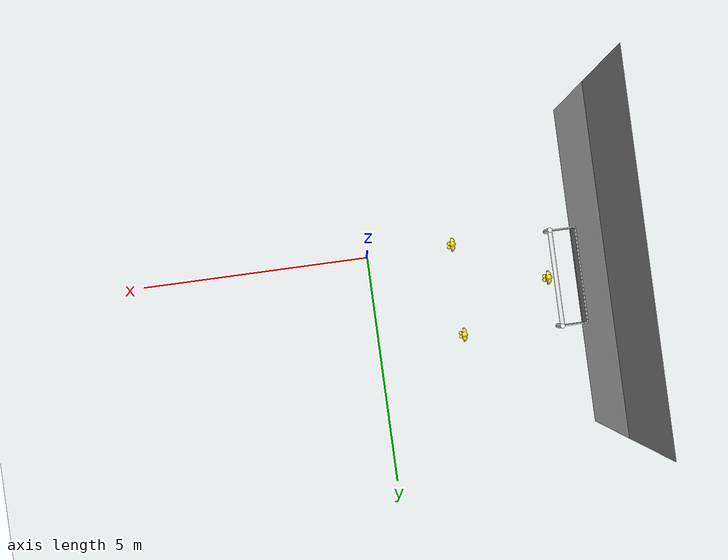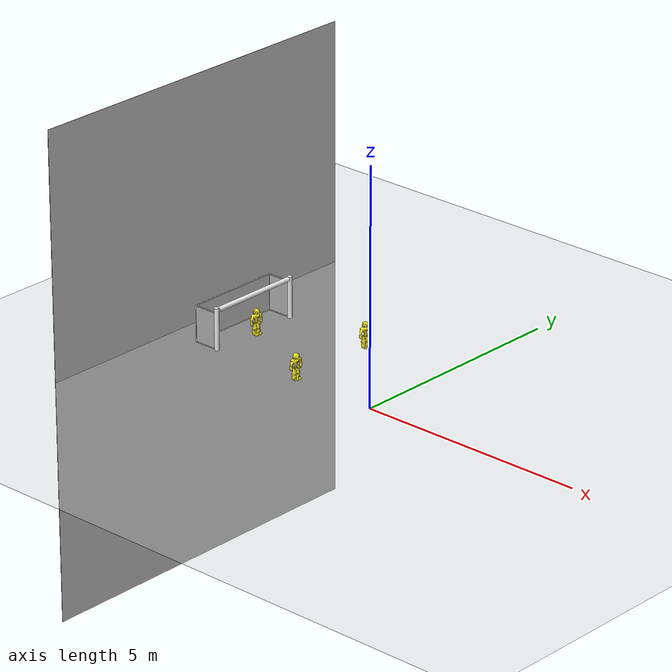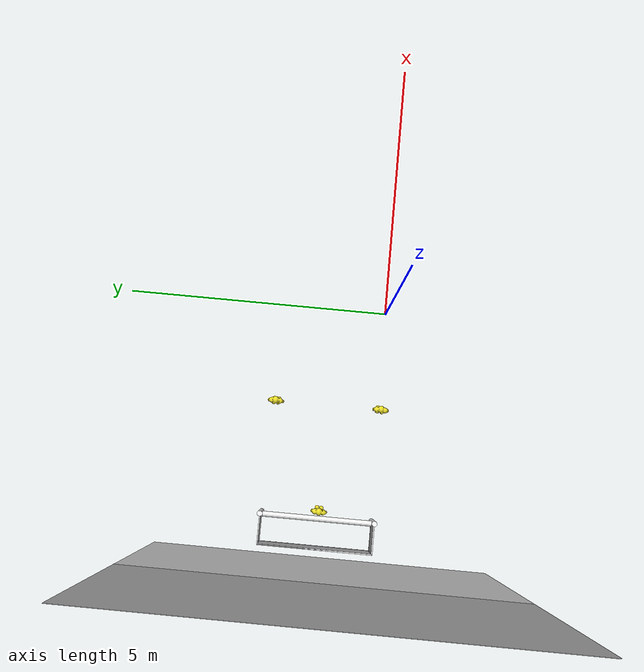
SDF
<sdf version="1.6">
 <world name="default">
  <model name="ground_plane">
   <static>1</static>
   <link name="link">
    <collision name="collision">
     <geometry><plane><normal>0 0 1</normal><size>100 100</size></plane></geometry>
     <surface><friction><ode><mu>100</mu><mu2>50</mu2></ode></friction></surface>
    </collision>
    <visual name="visual">
     <cast_shadows>0</cast_shadows>
     <geometry><plane><normal>0 0 1</normal><size>100 100</size></plane></geometry>
     <material>
      <script><uri>file://media/materials/scripts/gazebo.material</uri><name>Gazebo/Grey</name></script>
     </material>
    </visual>
    <velocity_decay><linear>0</linear><angular>0</angular></velocity_decay>
   </link>
  </model>
  <model name="unit_box">
   <model name="wall-1">
    <link name="link_2">
     <inertial>
      <mass>1</mass>
      <inertia>
       <ixx>0.166667</ixx>
       <ixy>0</ixy>
       <ixz>0</ixz>
       <iyy>0.166667</iyy>
       <iyz>0</iyz>
       <izz>0.166667</izz>
      </inertia>
     </inertial>
     <pose>-0 1e-06 0 0 -0 0</pose>
     <visual name="visual">
      <geometry><box><size>9 0.1 2</size></box></geometry>
      <material>
       <lighting>1</lighting>
       <script><uri>file://media/materials/scripts/gazebo.material</uri><name>Gazebo/Grey</name></script>
       <shader type="vertex"><normal_map>__default__</normal_map></shader>
       <ambient>0.3 0.3 0.3 1</ambient>
       <diffuse>0.7 0.7 0.7 1</diffuse>
       <specular>0.01 0.01 0.01 1</specular>
       <emissive>0 0 0 1</emissive>
      </material>
      <transparency>1</transparency>
     </visual>
     <collision name="collision">
      <geometry><box><size>9 0.1 2</size></box></geometry>
      <surface>
       <friction>
        <ode><mu>1</mu><mu2>1</mu2><fdir1>0 0 0</fdir1><slip1>0</slip1><slip2>0</slip2></ode>
        <torsional>
         <coefficient>1</coefficient>
         <patch_radius>0</patch_radius>
         <surface_radius>0</surface_radius>
         <use_patch_radius>1</use_patch_radius>
         <ode><slip>0</slip></ode>
        </torsional>
       </friction>
       <bounce><restitution_coefficient>0</restitution_coefficient><threshold>1e+06</threshold></bounce>
       <contact>
        <collide_without_contact>0</collide_without_contact>
        <collide_without_contact_bitmask>1</collide_without_contact_bitmask>
        <collide_bitmask>1</collide_bitmask>
        <ode>
         <soft_cfm>0</soft_cfm>
         <soft_erp>0.2</soft_erp>
         <kp>1e+13</kp>
         <kd>1</kd>
         <max_vel>0.01</max_vel>
         <min_depth>0</min_depth>
        </ode>
        <bullet>
         <split_impulse>1</split_impulse>
         <split_impulse_penetration_threshold>-0.01</split_impulse_penetration_threshold>
         <soft_cfm>0</soft_cfm>
         <soft_erp>0.2</soft_erp>
         <kp>1e+13</kp>
         <kd>1</kd>
        </bullet>
       </contact>
      </surface>
     </collision>
    </link>
    <static>1</static>
    <pose>3.98426 -0.483842 0 0 -0 0</pose>
   </model>
   <static>0</static>
   <pose>-3.95674 -1.5938 0 0 -0 0</pose>
  </model>
  <model name="unit_box_0">
   <model name="wall-1">
    <link name="link_2">
     <inertial>
      <mass>1</mass>
      <inertia>
       <ixx>0.166667</ixx>
       <ixy>0</ixy>
       <ixz>0</ixz>
       <iyy>0.166667</iyy>
       <iyz>0</iyz>
       <izz>0.166667</izz>
      </inertia>
     </inertial>
     <pose>-0 1e-06 0 0 -0 0</pose>
     <visual name="visual">
      <geometry><box><size>9 0.1 2</size></box></geometry>
      <material>
       <lighting>1</lighting>
       <script><uri>file://media/materials/scripts/gazebo.material</uri><name>Gazebo/Grey</name></script>
       <shader type="vertex"><normal_map>__default__</normal_map></shader>
       <ambient>0.3 0.3 0.3 1</ambient>
       <diffuse>0.7 0.7 0.7 1</diffuse>
       <specular>0.01 0.01 0.01 1</specular>
       <emissive>0 0 0 1</emissive>
      </material>
      <transparency>1</transparency>
     </visual>
     <collision name="collision">
      <geometry><box><size>9 0.1 2</size></box></geometry>
      <surface>
       <friction>
        <ode><mu>1</mu><mu2>1</mu2><fdir1>0 0 0</fdir1><slip1>0</slip1><slip2>0</slip2></ode>
        <torsional>
         <coefficient>1</coefficient>
         <patch_radius>0</patch_radius>
         <surface_radius>0</surface_radius>
         <use_patch_radius>1</use_patch_radius>
         <ode><slip>0</slip></ode>
        </torsional>
       </friction>
       <bounce><restitution_coefficient>0</restitution_coefficient><threshold>1e+06</threshold></bounce>
       <contact>
        <collide_without_contact>0</collide_without_contact>
        <collide_without_contact_bitmask>1</collide_without_contact_bitmask>
        <collide_bitmask>1</collide_bitmask>
        <ode>
         <soft_cfm>0</soft_cfm>
         <soft_erp>0.2</soft_erp>
         <kp>1e+13</kp>
         <kd>1</kd>
         <max_vel>0.01</max_vel>
         <min_depth>0</min_depth>
        </ode>
        <bullet>
         <split_impulse>1</split_impulse>
         <split_impulse_penetration_threshold>-0.01</split_impulse_penetration_threshold>
         <soft_cfm>0</soft_cfm>
         <soft_erp>0.2</soft_erp>
         <kp>1e+13</kp>
         <kd>1</kd>
        </bullet>
       </contact>
      </surface>
     </collision>
    </link>
    <static>1</static>
    <pose>3.98426 -0.483842 0 0 -0 0</pose>
   </model>
   <static>1</static>
   <pose>-3.97391 4.5594 0 0 -0 0</pose>
  </model>
  <model name="unit_box_2">
   <model name="wall-1">
    <link name="link_2">
     <inertial>
      <mass>1</mass>
      <inertia>
       <ixx>0.166667</ixx>
       <ixy>0</ixy>
       <ixz>0</ixz>
       <iyy>0.166667</iyy>
       <iyz>0</iyz>
       <izz>0.166667</izz>
      </inertia>
     </inertial>
     <pose>-0 1e-06 0 0 -0 0</pose>
     <visual name="visual">
      <geometry><box><size>9 0.1 2</size></box></geometry>
      <material>
       <lighting>1</lighting>
       <script><uri>file://media/materials/scripts/gazebo.material</uri><name>Gazebo/Grey</name></script>
       <shader type="vertex"><normal_map>__default__</normal_map></shader>
       <ambient>0.3 0.3 0.3 1</ambient>
       <diffuse>0.7 0.7 0.7 1</diffuse>
       <specular>0.01 0.01 0.01 1</specular>
       <emissive>0 0 0 1</emissive>
      </material>
      <transparency>1</transparency>
     </visual>
     <collision name="collision">
      <geometry><box><size>9 0.1 2</size></box></geometry>
      <surface>
       <friction>
        <ode><mu>1</mu><mu2>1</mu2><fdir1>0 0 0</fdir1><slip1>0</slip1><slip2>0</slip2></ode>
        <torsional>
         <coefficient>1</coefficient>
         <patch_radius>0</patch_radius>
         <surface_radius>0</surface_radius>
         <use_patch_radius>1</use_patch_radius>
         <ode><slip>0</slip></ode>
        </torsional>
       </friction>
       <bounce><restitution_coefficient>0</restitution_coefficient><threshold>1e+06</threshold></bounce>
       <contact>
        <collide_without_contact>0</collide_without_contact>
        <collide_without_contact_bitmask>1</collide_without_contact_bitmask>
        <collide_bitmask>1</collide_bitmask>
        <ode>
         <soft_cfm>0</soft_cfm>
         <soft_erp>0.2</soft_erp>
         <kp>1e+13</kp>
         <kd>1</kd>
         <max_vel>0.01</max_vel>
         <min_depth>0</min_depth>
        </ode>
        <bullet>
         <split_impulse>1</split_impulse>
         <split_impulse_penetration_threshold>-0.01</split_impulse_penetration_threshold>
         <soft_cfm>0</soft_cfm>
         <soft_erp>0.2</soft_erp>
         <kp>1e+13</kp>
         <kd>1</kd>
        </bullet>
       </contact>
      </surface>
     </collision>
    </link>
    <static>1</static>
    <pose>3.98426 -0.483842 0 0 -0 0</pose>
   </model>
   <static>1</static>
   <pose>-5.10001 -3 0 0 -0 1.5707</pose>
  </model>
  <model name="robocup_3d_goal_0">
   <static>1</static>
   <link name="left_post">
    <pose>0 1.05 0.45 0 -0 0</pose>
    <collision name="collision">
     <geometry><cylinder><radius>0.05</radius><length>0.9</length></cylinder></geometry>
    </collision>
    <visual name="visual">
     <geometry><cylinder><radius>0.05</radius><length>0.9</length></cylinder></geometry>
     <material>
      <script><uri>file://media/materials/scripts/gazebo.material</uri><name>Gazebo/white</name></script>
     </material>
    </visual>
   </link>
   <link name="left_support_horiz_lower">
    <pose>0.3 1.05 0.01 0 -0 0</pose>
    <collision name="collision"><geometry><box><size>0.5 0.02 0.02</size></box></geometry></collision>
    <visual name="visual">
     <geometry><box><size>0.5 0.02 0.02</size></box></geometry>
     <material>
      <script><uri>file://media/materials/scripts/gazebo.material</uri><name>Gazebo/White</name></script>
     </material>
    </visual>
   </link>
   <link name="left_support_horiz_upper">
    <pose>0.3 1.05 0.79 0 -0 0</pose>
    <collision name="collision"><geometry><box><size>0.5 0.02 0.02</size></box></geometry></collision>
    <visual name="visual">
     <geometry><box><size>0.5 0.02 0.02</size></box></geometry>
     <material>
      <script><uri>file://media/materials/scripts/gazebo.material</uri><name>Gazebo/White</name></script>
     </material>
    </visual>
   </link>
   <link name="left_support_vertical">
    <pose>0.56 1.05 0.4 3.14159 1.57079 3.14159</pose>
    <collision name="collision"><geometry><box><size>0.8 0.02 0.02</size></box></geometry></collision>
    <visual name="visual">
     <geometry><box><size>0.8 0.02 0.02</size></box></geometry>
     <material>
      <script><uri>file://media/materials/scripts/gazebo.material</uri><name>Gazebo/White</name></script>
     </material>
    </visual>
   </link>
   <link name="right_support_horiz_lower">
    <pose>0.3 -1.05 0.01 0 -0 0</pose>
    <collision name="collision"><geometry><box><size>0.5 0.02 0.02</size></box></geometry></collision>
    <visual name="visual">
     <geometry><box><size>0.5 0.02 0.02</size></box></geometry>
     <material>
      <script><uri>file://media/materials/scripts/gazebo.material</uri><name>Gazebo/White</name></script>
     </material>
    </visual>
   </link>
   <link name="right_support_horiz_upper">
    <pose>0.3 -1.05 0.79 0 -0 0</pose>
    <collision name="collision"><geometry><box><size>0.5 0.02 0.02</size></box></geometry></collision>
    <visual name="visual">
     <geometry><box><size>0.5 0.02 0.02</size></box></geometry>
     <material>
      <script><uri>file://media/materials/scripts/gazebo.material</uri><name>Gazebo/White</name></script>
     </material>
    </visual>
   </link>
   <link name="right_support_vertical">
    <pose>0.56 -1.05 0.4 3.14159 1.57079 3.14159</pose>
    <collision name="collision"><geometry><box><size>0.8 0.02 0.02</size></box></geometry></collision>
    <visual name="visual">
     <geometry><box><size>0.8 0.02 0.02</size></box></geometry>
     <material>
      <script><uri>file://media/materials/scripts/gazebo.material</uri><name>Gazebo/White</name></script>
     </material>
    </visual>
   </link>
   <link name="center_support_horiz_lower">
    <pose>0.56 0 0.01 3.14159 1.57079 3.14159</pose>
    <collision name="collision"><geometry><box><size>0.02 2.08 0.02</size></box></geometry></collision>
    <visual name="visual">
     <geometry><box><size>0.02 2.08 0.02</size></box></geometry>
     <material>
      <script><uri>file://media/materials/scripts/gazebo.material</uri><name>Gazebo/White</name></script>
     </material>
    </visual>
   </link>
   <link name="center_support_horiz_upper">
    <pose>0.56 0 0.79 3.14159 1.57079 3.14159</pose>
    <collision name="collision"><geometry><box><size>0.02 2.08 0.02</size></box></geometry></collision>
    <visual name="visual">
     <geometry><box><size>0.02 2.08 0.02</size></box></geometry>
     <material>
      <script><uri>file://media/materials/scripts/gazebo.material</uri><name>Gazebo/White</name></script>
     </material>
    </visual>
   </link>
   <link name="right_post">
    <pose>0 -1.05 0.45 0 -0 0</pose>
    <collision name="collision">
     <geometry><cylinder><radius>0.05</radius><length>0.9</length></cylinder></geometry>
    </collision>
    <visual name="visual">
     <geometry><cylinder><radius>0.05</radius><length>0.9</length></cylinder></geometry>
     <material>
      <script><uri>file://media/materials/scripts/gazebo.material</uri><name>Gazebo/white</name></script>
     </material>
    </visual>
   </link>
   <link name="crossbar">
    <pose>0 0 0.85 1.57 1.57 0</pose>
    <collision name="collision">
     <geometry><cylinder><radius>0.05</radius><length>2</length></cylinder></geometry>
    </collision>
    <visual name="visual">
     <geometry><cylinder><radius>0.05</radius><length>2</length></cylinder></geometry>
     <material>
      <script><uri>file://media/materials/scripts/gazebo.material</uri><name>Gazebo/white</name></script>
     </material>
    </visual>
   </link>
   <link name="center_net">
    <pose>0.56 0 0.4 0 -0 0</pose>
    <collision name="collision"><geometry><box><size>0.01 2.1 0.8</size></box></geometry></collision>
    <visual name="visual">
     <geometry><box><size>0.01 2.1 0.8</size></box></geometry>
     <material>
      <script>
       <uri>model://robocup09_spl_field/materials/scripts/</uri>
       <uri>model://robocup09_spl_field/materials/textures/</uri>
       <name>RoboCup/Net</name>
      </script>
     </material>
    </visual>
   </link>
   <link name="left_net">
    <pose>0.3 1.05 0.4 0 -0 0</pose>
    <collision name="collision"><geometry><box><size>0.5 0.01 0.76</size></box></geometry></collision>
    <visual name="visual">
     <geometry><box><size>0.5 0.01 0.76</size></box></geometry>
     <material>
      <script>
       <uri>model://robocup09_spl_field/materials/scripts/</uri>
       <uri>model://robocup09_spl_field/materials/textures/</uri>
       <name>RoboCup/Net</name>
      </script>
     </material>
    </visual>
   </link>
   <link name="right_net">
    <pose>0.3 -1.05 0.4 0 -0 0</pose>
    <collision name="collision"><geometry><box><size>0.5 0.01 0.76</size></box></geometry></collision>
    <visual name="visual">
     <geometry><box><size>0.5 0.01 0.76</size></box></geometry>
     <material>
      <script>
       <uri>model://robocup09_spl_field/materials/scripts/</uri>
       <uri>model://robocup09_spl_field/materials/textures/</uri>
       <name>RoboCup/Net</name>
      </script>
     </material>
    </visual>
   </link>
   <pose>-4 1 -0 0 -0 3.14159</pose>
  </model>
  <model name="nao12">
   <model name="nao_body">
    <link name="link_0">
     <inertial>
      <mass>15</mass>
      <inertia><ixx>0</ixx><ixy>0</ixy><ixz>0</ixz><iyy>0</iyy><iyz>0</iyz><izz>0</izz></inertia>
     </inertial>
     <visual name="visual">
      <geometry>
       <mesh><uri>/usr/share/nao_body_mesh/nao_robot.stl</uri><scale>0.0037 0.0037 0.0037</scale></mesh>
      </geometry>
      <material>
       <lighting>1</lighting>
       <script><uri>file://media/materials/scripts/gazebo.material</uri><name>Gazebo/Yellow</name></script>
      </material>
     </visual>
     <collision name="collision">
      <pose>-0.025 -0.1 0.28 0 -0 0</pose>
      <geometry><box><size>0.35 0.22 0.57</size></box></geometry>
      <surface>
       <friction>
        <ode><mu>2</mu><mu2>2</mu2><fdir1>0 0 0</fdir1><slip1>0</slip1><slip2>0</slip2></ode>
        <torsional>
         <coefficient>1</coefficient>
         <patch_radius>0</patch_radius>
         <surface_radius>0</surface_radius>
         <use_patch_radius>1</use_patch_radius>
         <ode><slip>0</slip></ode>
        </torsional>
       </friction>
       <bounce><restitution_coefficient>0</restitution_coefficient><threshold>1e+06</threshold></bounce>
       <contact>
        <collide_without_contact>0</collide_without_contact>
        <collide_without_contact_bitmask>1</collide_without_contact_bitmask>
        <collide_bitmask>1</collide_bitmask>
        <ode>
         <soft_cfm>0</soft_cfm>
         <soft_erp>0.2</soft_erp>
         <kp>1e+13</kp>
         <kd>1</kd>
         <max_vel>0.01</max_vel>
         <min_depth>0</min_depth>
        </ode>
        <bullet>
         <split_impulse>1</split_impulse>
         <split_impulse_penetration_threshold>-0.01</split_impulse_penetration_threshold>
         <soft_cfm>0</soft_cfm>
         <soft_erp>0.2</soft_erp>
         <kp>1e+13</kp>
         <kd>1</kd>
        </bullet>
       </contact>
      </surface>
     </collision>
    </link>
    <static>0</static>
    <pose>-0 -1e-06 0 0 -0 1.52144</pose>
   </model>
   <static>0</static>
   <pose>-2 0 0.0345 0 -0 0</pose>
  </model>
  <model name="nao14">
   <model name="nao_body">
    <link name="link_0">
     <inertial>
      <mass>15</mass>
      <inertia><ixx>0</ixx><ixy>0</ixy><ixz>0</ixz><iyy>0</iyy><iyz>0</iyz><izz>0</izz></inertia>
     </inertial>
     <visual name="visual">
      <geometry>
       <mesh><uri>/usr/share/nao_body_mesh/nao_robot.stl</uri><scale>0.0037 0.0037 0.0037</scale></mesh>
      </geometry>
      <material>
       <lighting>1</lighting>
       <script><uri>file://media/materials/scripts/gazebo.material</uri><name>Gazebo/Yellow</name></script>
      </material>
     </visual>
     <collision name="collision">
      <pose>-0.025 -0.1 0.28 0 -0 0</pose>
      <geometry><box><size>0.35 0.22 0.57</size></box></geometry>
      <surface>
       <friction>
        <ode><mu>2</mu><mu2>2</mu2><fdir1>0 0 0</fdir1><slip1>0</slip1><slip2>0</slip2></ode>
        <torsional>
         <coefficient>1</coefficient>
         <patch_radius>0</patch_radius>
         <surface_radius>0</surface_radius>
         <use_patch_radius>1</use_patch_radius>
         <ode><slip>0</slip></ode>
        </torsional>
       </friction>
       <bounce><restitution_coefficient>0</restitution_coefficient><threshold>1e+06</threshold></bounce>
       <contact>
        <collide_without_contact>0</collide_without_contact>
        <collide_without_contact_bitmask>1</collide_without_contact_bitmask>
        <collide_bitmask>1</collide_bitmask>
        <ode>
         <soft_cfm>0</soft_cfm>
         <soft_erp>0.2</soft_erp>
         <kp>1e+13</kp>
         <kd>1</kd>
         <max_vel>0.01</max_vel>
         <min_depth>0</min_depth>
        </ode>
        <bullet>
         <split_impulse>1</split_impulse>
         <split_impulse_penetration_threshold>-0.01</split_impulse_penetration_threshold>
         <soft_cfm>0</soft_cfm>
         <soft_erp>0.2</soft_erp>
         <kp>1e+13</kp>
         <kd>1</kd>
        </bullet>
       </contact>
      </surface>
     </collision>
    </link>
    <static>0</static>
    <pose>-0 -1e-06 0 0 -0 1.52144</pose>
   </model>
   <static>0</static>
   <pose>-4 1 0.0345 0 -0 0</pose>
  </model>
  <model name="nao13">
   <model name="nao_body">
    <link name="link_0">
     <inertial>
      <mass>15</mass>
      <inertia><ixx>0</ixx><ixy>0</ixy><ixz>0</ixz><iyy>0</iyy><iyz>0</iyz><izz>0</izz></inertia>
     </inertial>
     <visual name="visual">
      <geometry>
       <mesh><uri>/usr/share/nao_body_mesh/nao_robot.stl</uri><scale>0.0037 0.0037 0.0037</scale></mesh>
      </geometry>
      <material>
       <lighting>1</lighting>
       <script><uri>file://media/materials/scripts/gazebo.material</uri><name>Gazebo/Yellow</name></script>
      </material>
     </visual>
     <collision name="collision">
      <pose>-0.025 -0.1 0.28 0 -0 0</pose>
      <geometry><box><size>0.35 0.22 0.57</size></box></geometry>
      <surface>
       <friction>
        <ode><mu>2</mu><mu2>2</mu2><fdir1>0 0 0</fdir1><slip1>0</slip1><slip2>0</slip2></ode>
        <torsional>
         <coefficient>1</coefficient>
         <patch_radius>0</patch_radius>
         <surface_radius>0</surface_radius>
         <use_patch_radius>1</use_patch_radius>
         <ode><slip>0</slip></ode>
        </torsional>
       </friction>
       <bounce><restitution_coefficient>0</restitution_coefficient><threshold>1e+06</threshold></bounce>
       <contact>
        <collide_without_contact>0</collide_without_contact>
        <collide_without_contact_bitmask>1</collide_without_contact_bitmask>
        <collide_bitmask>1</collide_bitmask>
        <ode>
         <soft_cfm>0</soft_cfm>
         <soft_erp>0.2</soft_erp>
         <kp>1e+13</kp>
         <kd>1</kd>
         <max_vel>0.01</max_vel>
         <min_depth>0</min_depth>
        </ode>
        <bullet>
         <split_impulse>1</split_impulse>
         <split_impulse_penetration_threshold>-0.01</split_impulse_penetration_threshold>
         <soft_cfm>0</soft_cfm>
         <soft_erp>0.2</soft_erp>
         <kp>1e+13</kp>
         <kd>1</kd>
        </bullet>
       </contact>
      </surface>
     </collision>
    </link>
    <static>0</static>
    <pose>-0 -1e-06 0 0 -0 1.52144</pose>
   </model>
   <static>0</static>
   <pose>-2 2 0.0345 0 -0 0</pose>
  </model>
  <model name="my_ground_plane">
   <static>1</static>
   <link name="link">
    <pose>0 0 0 1.57 -0 0</pose>
    <collision name="collision">
     <geometry><plane><size>8 10.5</size><normal>0 0 1</normal></plane></geometry>
     <surface><friction><ode><mu>100</mu><mu2>50</mu2></ode></friction></surface>
    </collision>
    <visual name="visual">
     <cast_shadows>0</cast_shadows>
     <geometry><plane><size>8 10.5</size><normal>0 0 1</normal></plane></geometry>
     <material>
      <script>
       <uri>model://my_ground_plane/materials/scripts</uri>
       <uri>model://my_ground_plane/materials/textures/</uri>
       <name>MyGroundPlane/Image</name>
      </script>
     </material>
    </visual>
   </link>
   <pose>-5.25 0.75 0 0 -0 1.57</pose>
  </model>
 </world>
</sdf>
